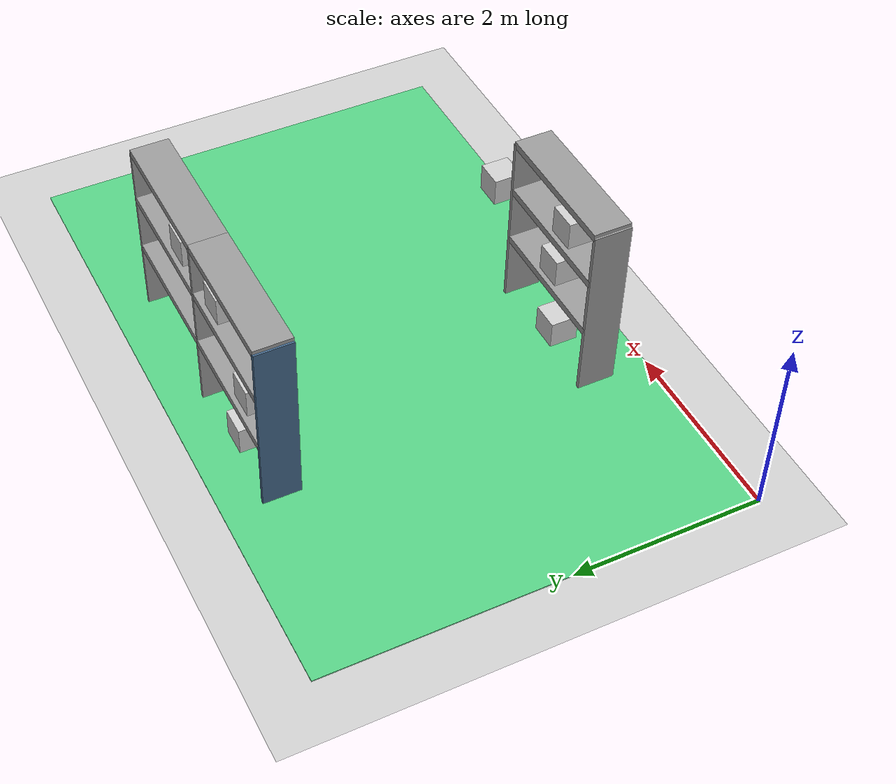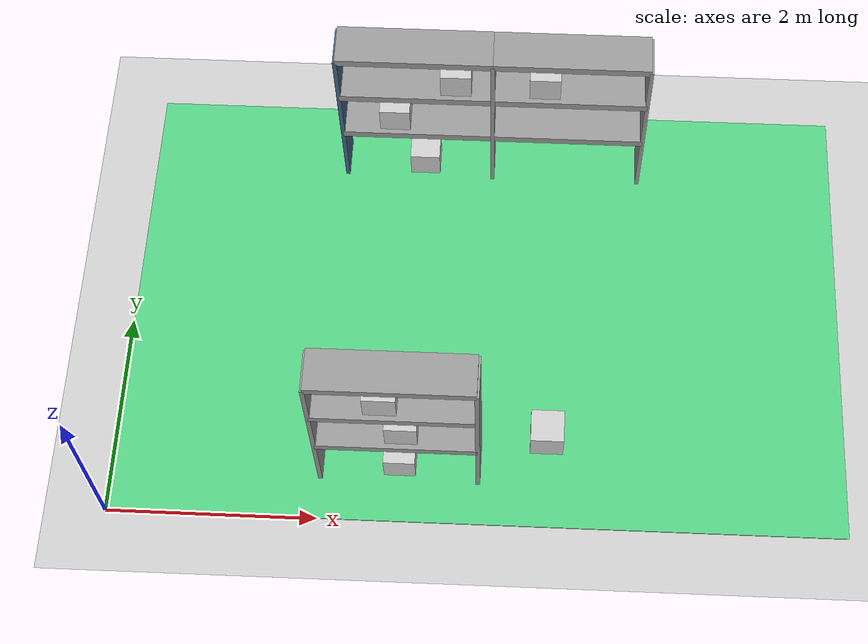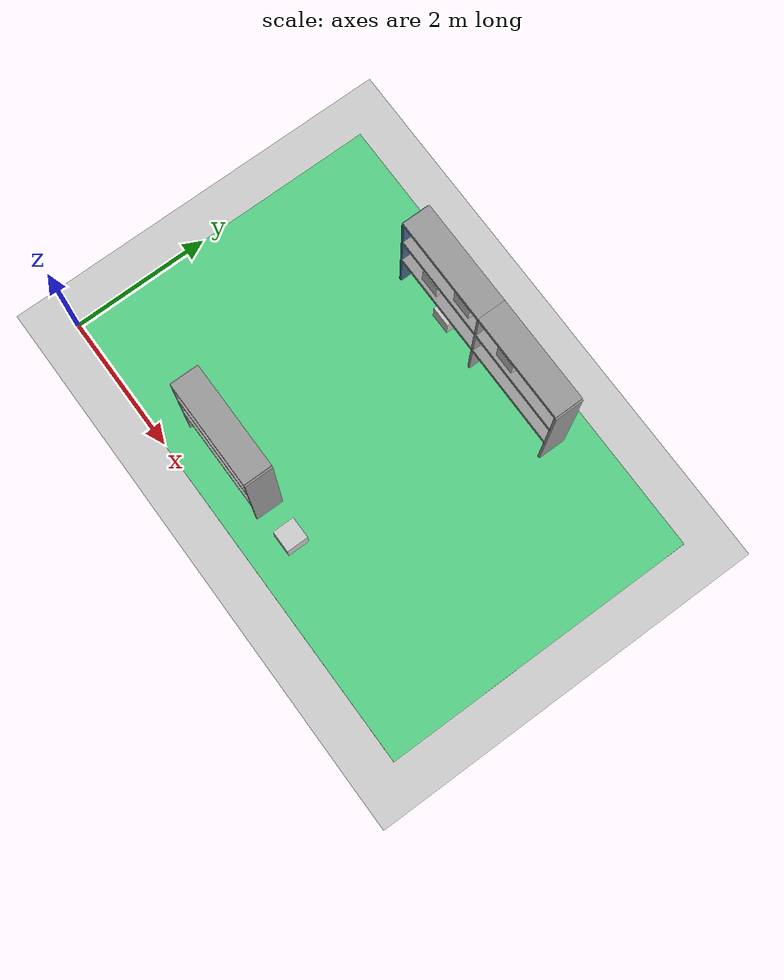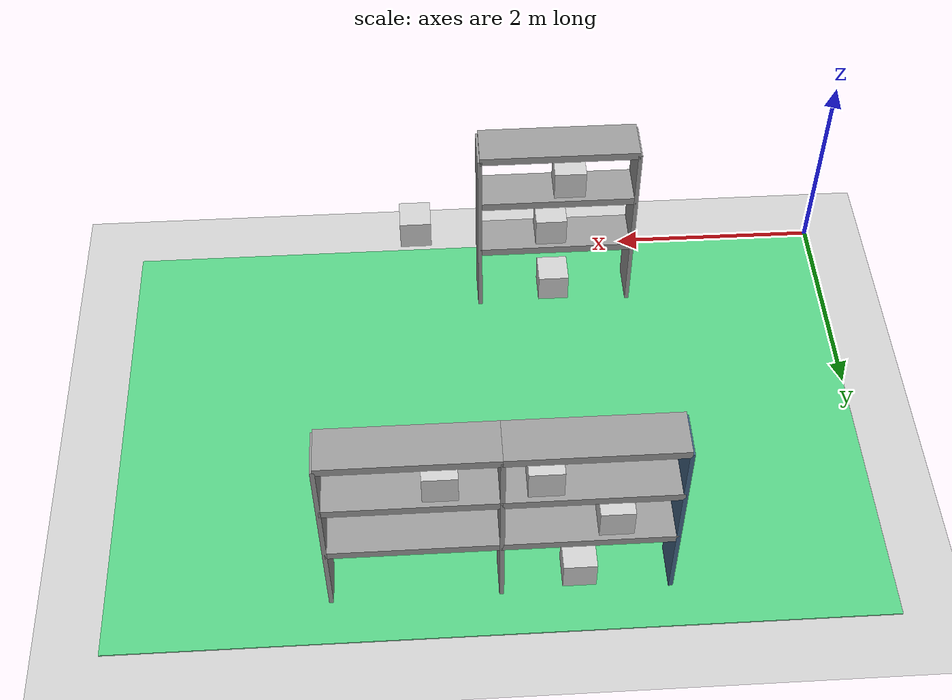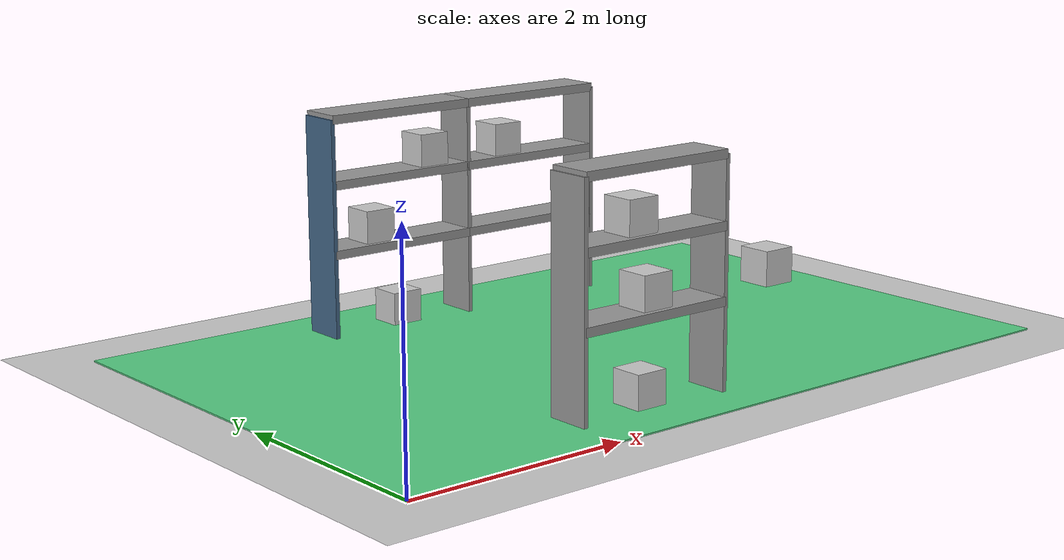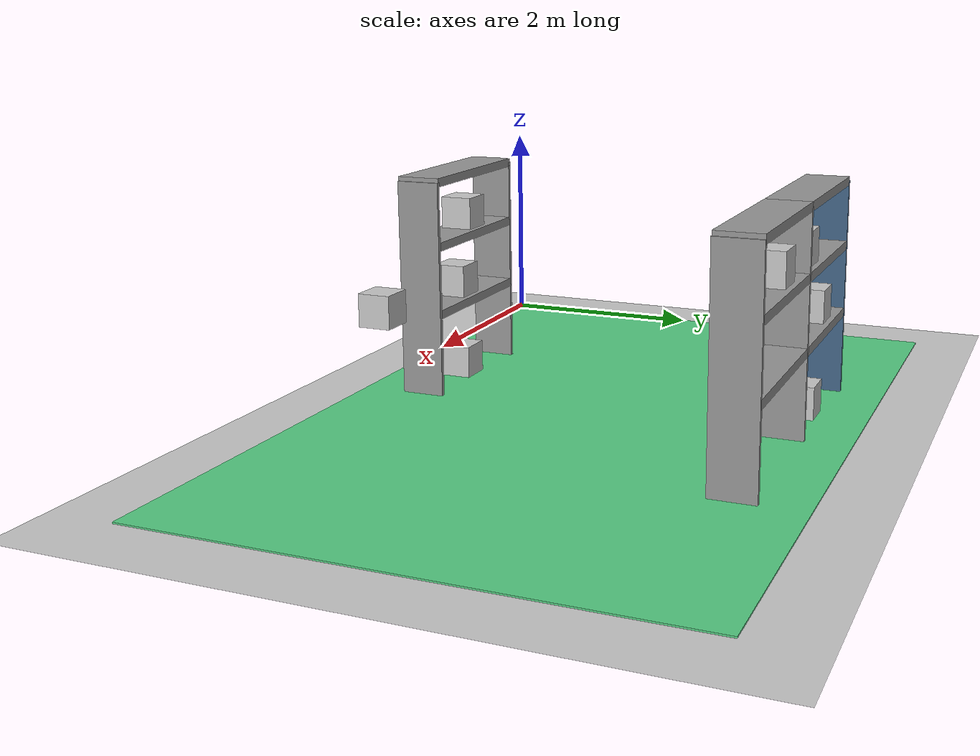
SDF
<sdf version="1.7">
 <world name="default">
  <model name="ground_plane">
   <static>1</static>
   <link name="link">
    <collision name="collision">
     <geometry><plane><normal>0 0 1</normal><size>100 100</size></plane></geometry>
     <surface>
      <contact><collide_bitmask>65535</collide_bitmask></contact>
      <friction><ode><mu>100</mu><mu2>50</mu2></ode></friction>
     </surface>
    </collision>
    <visual name="visual">
     <cast_shadows>0</cast_shadows>
     <geometry><plane><normal>0 0 1</normal><size>100 100</size></plane></geometry>
     <material>
      <script><uri>file://media/materials/scripts/gazebo.material</uri><name>Gazebo/Grey</name></script>
     </material>
    </visual>
   </link>
  </model>
  <model name="Shelf_1">
   <static>1</static>
   <link name="link_0">
    <inertial>
     <mass>1</mass>
     <inertia>
      <ixx>0.166667</ixx>
      <ixy>0</ixy>
      <ixz>0</ixz>
      <iyy>0.166667</iyy>
      <iyz>0</iyz>
      <izz>0.166667</izz>
     </inertia>
    </inertial>
    <pose>-0.75 0 -0.238 0 -0 0</pose>
    <visual name="visual">
     <geometry><box><size>0.04 0.4 2</size></box></geometry>
     <material>
      <lighting>1</lighting>
      <shader type="pixel"><normal_map>__default__</normal_map></shader>
      <ambient>0.267 0.4039 0.5372 1</ambient>
      <diffuse>0.267 0.4039 0.5372 1</diffuse>
      <specular>0.01 0.01 0.01 1</specular>
      <emissive>0 0 0 1</emissive>
     </material>
    </visual>
    <collision name="collision">
     <geometry><box><size>0.04 0.4 2</size></box></geometry>
     <surface>
      <friction>
       <ode><mu>1</mu><mu2>1</mu2><fdir1>0 0 0</fdir1><slip1>0</slip1><slip2>0</slip2></ode>
       <torsional>
        <coefficient>1</coefficient>
        <patch_radius>0</patch_radius>
        <surface_radius>0</surface_radius>
        <use_patch_radius>1</use_patch_radius>
        <ode><slip>0</slip></ode>
       </torsional>
      </friction>
      <bounce><restitution_coefficient>0</restitution_coefficient><threshold>1e+06</threshold></bounce>
      <contact>
       <collide_without_contact>0</collide_without_contact>
       <collide_without_contact_bitmask>1</collide_without_contact_bitmask>
       <collide_bitmask>1</collide_bitmask>
       <ode>
        <soft_cfm>0</soft_cfm>
        <soft_erp>0.2</soft_erp>
        <kp>1e+13</kp>
        <kd>1</kd>
        <max_vel>0.01</max_vel>
        <min_depth>0</min_depth>
       </ode>
       <bullet>
        <split_impulse>1</split_impulse>
        <split_impulse_penetration_threshold>-0.01</split_impulse_penetration_threshold>
        <soft_cfm>0</soft_cfm>
        <soft_erp>0.2</soft_erp>
        <kp>1e+13</kp>
        <kd>1</kd>
       </bullet>
      </contact>
     </surface>
    </collision>
   </link>
   <link name="link_0_clone">
    <inertial>
     <mass>1</mass>
     <inertia>
      <ixx>0.166667</ixx>
      <ixy>0</ixy>
      <ixz>0</ixz>
      <iyy>0.166667</iyy>
      <iyz>0</iyz>
      <izz>0.166667</izz>
     </inertia>
    </inertial>
    <pose>0.75 0 -0.238 0 -0 0</pose>
    <visual name="visual">
     <geometry><box><size>0.04 0.4 2</size></box></geometry>
     <material>
      <lighting>1</lighting>
      <script><uri>file://media/materials/scripts/gazebo.material</uri><name>Gazebo/Grey</name></script>
      <shader type="pixel"><normal_map>__default__</normal_map></shader>
      <ambient>0.3 0.3 0.3 1</ambient>
      <diffuse>0.7 0.7 0.7 1</diffuse>
      <specular>0.01 0.01 0.01 1</specular>
      <emissive>0 0 0 1</emissive>
     </material>
    </visual>
    <collision name="collision">
     <geometry><box><size>0.04 0.4 2</size></box></geometry>
     <surface>
      <friction>
       <ode><mu>1</mu><mu2>1</mu2><fdir1>0 0 0</fdir1><slip1>0</slip1><slip2>0</slip2></ode>
       <torsional>
        <coefficient>1</coefficient>
        <patch_radius>0</patch_radius>
        <surface_radius>0</surface_radius>
        <use_patch_radius>1</use_patch_radius>
        <ode><slip>0</slip></ode>
       </torsional>
      </friction>
      <bounce><restitution_coefficient>0</restitution_coefficient><threshold>1e+06</threshold></bounce>
      <contact>
       <collide_without_contact>0</collide_without_contact>
       <collide_without_contact_bitmask>1</collide_without_contact_bitmask>
       <collide_bitmask>1</collide_bitmask>
       <ode>
        <soft_cfm>0</soft_cfm>
        <soft_erp>0.2</soft_erp>
        <kp>1e+13</kp>
        <kd>1</kd>
        <max_vel>0.01</max_vel>
        <min_depth>0</min_depth>
       </ode>
       <bullet>
        <split_impulse>1</split_impulse>
        <split_impulse_penetration_threshold>-0.01</split_impulse_penetration_threshold>
        <soft_cfm>0</soft_cfm>
        <soft_erp>0.2</soft_erp>
        <kp>1e+13</kp>
        <kd>1</kd>
       </bullet>
      </contact>
     </surface>
    </collision>
   </link>
   <link name="link_1">
    <inertial>
     <mass>1</mass>
     <inertia>
      <ixx>0.166667</ixx>
      <ixy>0</ixy>
      <ixz>0</ixz>
      <iyy>0.166667</iyy>
      <iyz>0</iyz>
      <izz>0.166667</izz>
     </inertia>
    </inertial>
    <pose>0 0 -0.458 0 -0 0</pose>
    <visual name="visual">
     <geometry><box><size>1.5 0.4 0.08</size></box></geometry>
     <material>
      <lighting>1</lighting>
      <script><uri>file://media/materials/scripts/gazebo.material</uri><name>Gazebo/Grey</name></script>
      <shader type="pixel"><normal_map>__default__</normal_map></shader>
      <ambient>0.3 0.3 0.3 1</ambient>
      <diffuse>0.7 0.7 0.7 1</diffuse>
      <specular>0.01 0.01 0.01 1</specular>
      <emissive>0 0 0 1</emissive>
     </material>
    </visual>
    <collision name="collision">
     <geometry><box><size>1.5 0.4 0.08</size></box></geometry>
     <surface>
      <friction>
       <ode><mu>1</mu><mu2>1</mu2><fdir1>0 0 0</fdir1><slip1>0</slip1><slip2>0</slip2></ode>
       <torsional>
        <coefficient>1</coefficient>
        <patch_radius>0</patch_radius>
        <surface_radius>0</surface_radius>
        <use_patch_radius>1</use_patch_radius>
        <ode><slip>0</slip></ode>
       </torsional>
      </friction>
      <bounce><restitution_coefficient>0</restitution_coefficient><threshold>1e+06</threshold></bounce>
      <contact>
       <collide_without_contact>0</collide_without_contact>
       <collide_without_contact_bitmask>1</collide_without_contact_bitmask>
       <collide_bitmask>1</collide_bitmask>
       <ode>
        <soft_cfm>0</soft_cfm>
        <soft_erp>0.2</soft_erp>
        <kp>1e+13</kp>
        <kd>1</kd>
        <max_vel>0.01</max_vel>
        <min_depth>0</min_depth>
       </ode>
       <bullet>
        <split_impulse>1</split_impulse>
        <split_impulse_penetration_threshold>-0.01</split_impulse_penetration_threshold>
        <soft_cfm>0</soft_cfm>
        <soft_erp>0.2</soft_erp>
        <kp>1e+13</kp>
        <kd>1</kd>
       </bullet>
      </contact>
     </surface>
    </collision>
   </link>
   <link name="link_1_clone">
    <inertial>
     <mass>1</mass>
     <inertia>
      <ixx>0.166667</ixx>
      <ixy>0</ixy>
      <ixz>0</ixz>
      <iyy>0.166667</iyy>
      <iyz>0</iyz>
      <izz>0.166667</izz>
     </inertia>
    </inertial>
    <pose>0 0 0.172 0 -0 0</pose>
    <visual name="visual">
     <geometry><box><size>1.5 0.4 0.08</size></box></geometry>
     <material>
      <lighting>1</lighting>
      <script><uri>file://media/materials/scripts/gazebo.material</uri><name>Gazebo/Grey</name></script>
      <shader type="pixel"><normal_map>__default__</normal_map></shader>
      <ambient>0.3 0.3 0.3 1</ambient>
      <diffuse>0.7 0.7 0.7 1</diffuse>
      <specular>0.01 0.01 0.01 1</specular>
      <emissive>0 0 0 1</emissive>
     </material>
    </visual>
    <collision name="collision">
     <geometry><box><size>1.5 0.4 0.08</size></box></geometry>
     <surface>
      <friction>
       <ode><mu>1</mu><mu2>1</mu2><fdir1>0 0 0</fdir1><slip1>0</slip1><slip2>0</slip2></ode>
       <torsional>
        <coefficient>1</coefficient>
        <patch_radius>0</patch_radius>
        <surface_radius>0</surface_radius>
        <use_patch_radius>1</use_patch_radius>
        <ode><slip>0</slip></ode>
       </torsional>
      </friction>
      <bounce><restitution_coefficient>0</restitution_coefficient><threshold>1e+06</threshold></bounce>
      <contact>
       <collide_without_contact>0</collide_without_contact>
       <collide_without_contact_bitmask>1</collide_without_contact_bitmask>
       <collide_bitmask>1</collide_bitmask>
       <ode>
        <soft_cfm>0</soft_cfm>
        <soft_erp>0.2</soft_erp>
        <kp>1e+13</kp>
        <kd>1</kd>
        <max_vel>0.01</max_vel>
        <min_depth>0</min_depth>
       </ode>
       <bullet>
        <split_impulse>1</split_impulse>
        <split_impulse_penetration_threshold>-0.01</split_impulse_penetration_threshold>
        <soft_cfm>0</soft_cfm>
        <soft_erp>0.2</soft_erp>
        <kp>1e+13</kp>
        <kd>1</kd>
       </bullet>
      </contact>
     </surface>
    </collision>
   </link>
   <link name="link_1_clone_clone">
    <inertial>
     <mass>1</mass>
     <inertia>
      <ixx>0.166667</ixx>
      <ixy>0</ixy>
      <ixz>0</ixz>
      <iyy>0.166667</iyy>
      <iyz>0</iyz>
      <izz>0.166667</izz>
     </inertia>
    </inertial>
    <pose>0 0 0.762 0 -0 0</pose>
    <visual name="visual">
     <geometry><box><size>1.5 0.4 0.08</size></box></geometry>
     <material>
      <lighting>1</lighting>
      <script><uri>file://media/materials/scripts/gazebo.material</uri><name>Gazebo/Grey</name></script>
      <shader type="pixel"><normal_map>__default__</normal_map></shader>
      <ambient>0.3 0.3 0.3 1</ambient>
      <diffuse>0.7 0.7 0.7 1</diffuse>
      <specular>0.01 0.01 0.01 1</specular>
      <emissive>0 0 0 1</emissive>
     </material>
    </visual>
    <collision name="collision">
     <geometry><box><size>1.5 0.4 0.08</size></box></geometry>
     <surface>
      <friction>
       <ode><mu>1</mu><mu2>1</mu2><fdir1>0 0 0</fdir1><slip1>0</slip1><slip2>0</slip2></ode>
       <torsional>
        <coefficient>1</coefficient>
        <patch_radius>0</patch_radius>
        <surface_radius>0</surface_radius>
        <use_patch_radius>1</use_patch_radius>
        <ode><slip>0</slip></ode>
       </torsional>
      </friction>
      <bounce><restitution_coefficient>0</restitution_coefficient><threshold>1e+06</threshold></bounce>
      <contact>
       <collide_without_contact>0</collide_without_contact>
       <collide_without_contact_bitmask>1</collide_without_contact_bitmask>
       <collide_bitmask>1</collide_bitmask>
       <ode>
        <soft_cfm>0</soft_cfm>
        <soft_erp>0.2</soft_erp>
        <kp>1e+13</kp>
        <kd>1</kd>
        <max_vel>0.01</max_vel>
        <min_depth>0</min_depth>
       </ode>
       <bullet>
        <split_impulse>1</split_impulse>
        <split_impulse_penetration_threshold>-0.01</split_impulse_penetration_threshold>
        <soft_cfm>0</soft_cfm>
        <soft_erp>0.2</soft_erp>
        <kp>1e+13</kp>
        <kd>1</kd>
       </bullet>
      </contact>
     </surface>
    </collision>
   </link>
   <static>0</static>
   <pose>2.75 4 1.23 0 -0 0</pose>
  </model>
  <model name="Shelf_1_clone">
   <static>1</static>
   <link name="link_0">
    <inertial>
     <mass>1</mass>
     <inertia>
      <ixx>0.166667</ixx>
      <ixy>0</ixy>
      <ixz>0</ixz>
      <iyy>0.166667</iyy>
      <iyz>0</iyz>
      <izz>0.166667</izz>
     </inertia>
    </inertial>
    <pose>-0.75 0 -0.238 0 -0 0</pose>
    <visual name="visual">
     <geometry><box><size>0.04 0.4 2</size></box></geometry>
     <material>
      <lighting>1</lighting>
      <script><uri>file://media/materials/scripts/gazebo.material</uri><name>Gazebo/Grey</name></script>
      <shader type="pixel"><normal_map>__default__</normal_map></shader>
      <ambient>0.3 0.3 0.3 1</ambient>
      <diffuse>0.7 0.7 0.7 1</diffuse>
      <specular>0.01 0.01 0.01 1</specular>
      <emissive>0 0 0 1</emissive>
     </material>
    </visual>
    <collision name="collision">
     <geometry><box><size>0.04 0.4 2</size></box></geometry>
     <surface>
      <friction>
       <ode><mu>1</mu><mu2>1</mu2><fdir1>0 0 0</fdir1><slip1>0</slip1><slip2>0</slip2></ode>
       <torsional>
        <coefficient>1</coefficient>
        <patch_radius>0</patch_radius>
        <surface_radius>0</surface_radius>
        <use_patch_radius>1</use_patch_radius>
        <ode><slip>0</slip></ode>
       </torsional>
      </friction>
      <bounce><restitution_coefficient>0</restitution_coefficient><threshold>1e+06</threshold></bounce>
      <contact>
       <collide_without_contact>0</collide_without_contact>
       <collide_without_contact_bitmask>1</collide_without_contact_bitmask>
       <collide_bitmask>1</collide_bitmask>
       <ode>
        <soft_cfm>0</soft_cfm>
        <soft_erp>0.2</soft_erp>
        <kp>1e+13</kp>
        <kd>1</kd>
        <max_vel>0.01</max_vel>
        <min_depth>0</min_depth>
       </ode>
       <bullet>
        <split_impulse>1</split_impulse>
        <split_impulse_penetration_threshold>-0.01</split_impulse_penetration_threshold>
        <soft_cfm>0</soft_cfm>
        <soft_erp>0.2</soft_erp>
        <kp>1e+13</kp>
        <kd>1</kd>
       </bullet>
      </contact>
     </surface>
    </collision>
   </link>
   <link name="link_0_clone">
    <inertial>
     <mass>1</mass>
     <inertia>
      <ixx>0.166667</ixx>
      <ixy>0</ixy>
      <ixz>0</ixz>
      <iyy>0.166667</iyy>
      <iyz>0</iyz>
      <izz>0.166667</izz>
     </inertia>
    </inertial>
    <pose>0.75 0 -0.238 0 -0 0</pose>
    <visual name="visual">
     <geometry><box><size>0.04 0.4 2</size></box></geometry>
     <material>
      <lighting>1</lighting>
      <script><uri>file://media/materials/scripts/gazebo.material</uri><name>Gazebo/Grey</name></script>
      <shader type="pixel"><normal_map>__default__</normal_map></shader>
      <ambient>0.3 0.3 0.3 1</ambient>
      <diffuse>0.7 0.7 0.7 1</diffuse>
      <specular>0.01 0.01 0.01 1</specular>
      <emissive>0 0 0 1</emissive>
     </material>
    </visual>
    <collision name="collision">
     <geometry><box><size>0.04 0.4 2</size></box></geometry>
     <surface>
      <friction>
       <ode><mu>1</mu><mu2>1</mu2><fdir1>0 0 0</fdir1><slip1>0</slip1><slip2>0</slip2></ode>
       <torsional>
        <coefficient>1</coefficient>
        <patch_radius>0</patch_radius>
        <surface_radius>0</surface_radius>
        <use_patch_radius>1</use_patch_radius>
        <ode><slip>0</slip></ode>
       </torsional>
      </friction>
      <bounce><restitution_coefficient>0</restitution_coefficient><threshold>1e+06</threshold></bounce>
      <contact>
       <collide_without_contact>0</collide_without_contact>
       <collide_without_contact_bitmask>1</collide_without_contact_bitmask>
       <collide_bitmask>1</collide_bitmask>
       <ode>
        <soft_cfm>0</soft_cfm>
        <soft_erp>0.2</soft_erp>
        <kp>1e+13</kp>
        <kd>1</kd>
        <max_vel>0.01</max_vel>
        <min_depth>0</min_depth>
       </ode>
       <bullet>
        <split_impulse>1</split_impulse>
        <split_impulse_penetration_threshold>-0.01</split_impulse_penetration_threshold>
        <soft_cfm>0</soft_cfm>
        <soft_erp>0.2</soft_erp>
        <kp>1e+13</kp>
        <kd>1</kd>
       </bullet>
      </contact>
     </surface>
    </collision>
   </link>
   <link name="link_1">
    <inertial>
     <mass>1</mass>
     <inertia>
      <ixx>0.166667</ixx>
      <ixy>0</ixy>
      <ixz>0</ixz>
      <iyy>0.166667</iyy>
      <iyz>0</iyz>
      <izz>0.166667</izz>
     </inertia>
    </inertial>
    <pose>0 0 -0.458 0 -0 0</pose>
    <visual name="visual">
     <geometry><box><size>1.5 0.4 0.08</size></box></geometry>
     <material>
      <lighting>1</lighting>
      <script><uri>file://media/materials/scripts/gazebo.material</uri><name>Gazebo/Grey</name></script>
      <shader type="pixel"><normal_map>__default__</normal_map></shader>
      <ambient>0.3 0.3 0.3 1</ambient>
      <diffuse>0.7 0.7 0.7 1</diffuse>
      <specular>0.01 0.01 0.01 1</specular>
      <emissive>0 0 0 1</emissive>
     </material>
    </visual>
    <collision name="collision">
     <geometry><box><size>1.5 0.4 0.08</size></box></geometry>
     <surface>
      <friction>
       <ode><mu>1</mu><mu2>1</mu2><fdir1>0 0 0</fdir1><slip1>0</slip1><slip2>0</slip2></ode>
       <torsional>
        <coefficient>1</coefficient>
        <patch_radius>0</patch_radius>
        <surface_radius>0</surface_radius>
        <use_patch_radius>1</use_patch_radius>
        <ode><slip>0</slip></ode>
       </torsional>
      </friction>
      <bounce><restitution_coefficient>0</restitution_coefficient><threshold>1e+06</threshold></bounce>
      <contact>
       <collide_without_contact>0</collide_without_contact>
       <collide_without_contact_bitmask>1</collide_without_contact_bitmask>
       <collide_bitmask>1</collide_bitmask>
       <ode>
        <soft_cfm>0</soft_cfm>
        <soft_erp>0.2</soft_erp>
        <kp>1e+13</kp>
        <kd>1</kd>
        <max_vel>0.01</max_vel>
        <min_depth>0</min_depth>
       </ode>
       <bullet>
        <split_impulse>1</split_impulse>
        <split_impulse_penetration_threshold>-0.01</split_impulse_penetration_threshold>
        <soft_cfm>0</soft_cfm>
        <soft_erp>0.2</soft_erp>
        <kp>1e+13</kp>
        <kd>1</kd>
       </bullet>
      </contact>
     </surface>
    </collision>
   </link>
   <link name="link_1_clone">
    <inertial>
     <mass>1</mass>
     <inertia>
      <ixx>0.166667</ixx>
      <ixy>0</ixy>
      <ixz>0</ixz>
      <iyy>0.166667</iyy>
      <iyz>0</iyz>
      <izz>0.166667</izz>
     </inertia>
    </inertial>
    <pose>0 0 0.172 0 -0 0</pose>
    <visual name="visual">
     <geometry><box><size>1.5 0.4 0.08</size></box></geometry>
     <material>
      <lighting>1</lighting>
      <script><uri>file://media/materials/scripts/gazebo.material</uri><name>Gazebo/Grey</name></script>
      <shader type="pixel"><normal_map>__default__</normal_map></shader>
      <ambient>0.3 0.3 0.3 1</ambient>
      <diffuse>0.7 0.7 0.7 1</diffuse>
      <specular>0.01 0.01 0.01 1</specular>
      <emissive>0 0 0 1</emissive>
     </material>
    </visual>
    <collision name="collision">
     <geometry><box><size>1.5 0.4 0.08</size></box></geometry>
     <surface>
      <friction>
       <ode><mu>1</mu><mu2>1</mu2><fdir1>0 0 0</fdir1><slip1>0</slip1><slip2>0</slip2></ode>
       <torsional>
        <coefficient>1</coefficient>
        <patch_radius>0</patch_radius>
        <surface_radius>0</surface_radius>
        <use_patch_radius>1</use_patch_radius>
        <ode><slip>0</slip></ode>
       </torsional>
      </friction>
      <bounce><restitution_coefficient>0</restitution_coefficient><threshold>1e+06</threshold></bounce>
      <contact>
       <collide_without_contact>0</collide_without_contact>
       <collide_without_contact_bitmask>1</collide_without_contact_bitmask>
       <collide_bitmask>1</collide_bitmask>
       <ode>
        <soft_cfm>0</soft_cfm>
        <soft_erp>0.2</soft_erp>
        <kp>1e+13</kp>
        <kd>1</kd>
        <max_vel>0.01</max_vel>
        <min_depth>0</min_depth>
       </ode>
       <bullet>
        <split_impulse>1</split_impulse>
        <split_impulse_penetration_threshold>-0.01</split_impulse_penetration_threshold>
        <soft_cfm>0</soft_cfm>
        <soft_erp>0.2</soft_erp>
        <kp>1e+13</kp>
        <kd>1</kd>
       </bullet>
      </contact>
     </surface>
    </collision>
   </link>
   <link name="link_1_clone_clone">
    <inertial>
     <mass>1</mass>
     <inertia>
      <ixx>0.166667</ixx>
      <ixy>0</ixy>
      <ixz>0</ixz>
      <iyy>0.166667</iyy>
      <iyz>0</iyz>
      <izz>0.166667</izz>
     </inertia>
    </inertial>
    <pose>0 0 0.762 0 -0 0</pose>
    <visual name="visual">
     <geometry><box><size>1.5 0.4 0.08</size></box></geometry>
     <material>
      <lighting>1</lighting>
      <script><uri>file://media/materials/scripts/gazebo.material</uri><name>Gazebo/Grey</name></script>
      <shader type="pixel"><normal_map>__default__</normal_map></shader>
      <ambient>0.3 0.3 0.3 1</ambient>
      <diffuse>0.7 0.7 0.7 1</diffuse>
      <specular>0.01 0.01 0.01 1</specular>
      <emissive>0 0 0 1</emissive>
     </material>
    </visual>
    <collision name="collision">
     <geometry><box><size>1.5 0.4 0.08</size></box></geometry>
     <surface>
      <friction>
       <ode><mu>1</mu><mu2>1</mu2><fdir1>0 0 0</fdir1><slip1>0</slip1><slip2>0</slip2></ode>
       <torsional>
        <coefficient>1</coefficient>
        <patch_radius>0</patch_radius>
        <surface_radius>0</surface_radius>
        <use_patch_radius>1</use_patch_radius>
        <ode><slip>0</slip></ode>
       </torsional>
      </friction>
      <bounce><restitution_coefficient>0</restitution_coefficient><threshold>1e+06</threshold></bounce>
      <contact>
       <collide_without_contact>0</collide_without_contact>
       <collide_without_contact_bitmask>1</collide_without_contact_bitmask>
       <collide_bitmask>1</collide_bitmask>
       <ode>
        <soft_cfm>0</soft_cfm>
        <soft_erp>0.2</soft_erp>
        <kp>1e+13</kp>
        <kd>1</kd>
        <max_vel>0.01</max_vel>
        <min_depth>0</min_depth>
       </ode>
       <bullet>
        <split_impulse>1</split_impulse>
        <split_impulse_penetration_threshold>-0.01</split_impulse_penetration_threshold>
        <soft_cfm>0</soft_cfm>
        <soft_erp>0.2</soft_erp>
        <kp>1e+13</kp>
        <kd>1</kd>
       </bullet>
      </contact>
     </surface>
    </collision>
   </link>
   <static>0</static>
   <pose>4.25 4 1.23 0 -0 0</pose>
  </model>
  <model name="Shelf_1_clone_0">
   <static>1</static>
   <link name="link_0">
    <inertial>
     <mass>1</mass>
     <inertia>
      <ixx>0.166667</ixx>
      <ixy>0</ixy>
      <ixz>0</ixz>
      <iyy>0.166667</iyy>
      <iyz>0</iyz>
      <izz>0.166667</izz>
     </inertia>
    </inertial>
    <pose>-0.75 0 -0.238 0 -0 0</pose>
    <visual name="visual">
     <geometry><box><size>0.04 0.4 2</size></box></geometry>
     <material>
      <lighting>1</lighting>
      <script><uri>file://media/materials/scripts/gazebo.material</uri><name>Gazebo/Grey</name></script>
      <shader type="pixel"><normal_map>__default__</normal_map></shader>
      <ambient>0.3 0.3 0.3 1</ambient>
      <diffuse>0.7 0.7 0.7 1</diffuse>
      <specular>0.01 0.01 0.01 1</specular>
      <emissive>0 0 0 1</emissive>
     </material>
    </visual>
    <collision name="collision">
     <geometry><box><size>0.04 0.4 2</size></box></geometry>
     <surface>
      <friction>
       <ode><mu>1</mu><mu2>1</mu2><fdir1>0 0 0</fdir1><slip1>0</slip1><slip2>0</slip2></ode>
       <torsional>
        <coefficient>1</coefficient>
        <patch_radius>0</patch_radius>
        <surface_radius>0</surface_radius>
        <use_patch_radius>1</use_patch_radius>
        <ode><slip>0</slip></ode>
       </torsional>
      </friction>
      <bounce><restitution_coefficient>0</restitution_coefficient><threshold>1e+06</threshold></bounce>
      <contact>
       <collide_without_contact>0</collide_without_contact>
       <collide_without_contact_bitmask>1</collide_without_contact_bitmask>
       <collide_bitmask>1</collide_bitmask>
       <ode>
        <soft_cfm>0</soft_cfm>
        <soft_erp>0.2</soft_erp>
        <kp>1e+13</kp>
        <kd>1</kd>
        <max_vel>0.01</max_vel>
        <min_depth>0</min_depth>
       </ode>
       <bullet>
        <split_impulse>1</split_impulse>
        <split_impulse_penetration_threshold>-0.01</split_impulse_penetration_threshold>
        <soft_cfm>0</soft_cfm>
        <soft_erp>0.2</soft_erp>
        <kp>1e+13</kp>
        <kd>1</kd>
       </bullet>
      </contact>
     </surface>
    </collision>
   </link>
   <link name="link_0_clone">
    <inertial>
     <mass>1</mass>
     <inertia>
      <ixx>0.166667</ixx>
      <ixy>0</ixy>
      <ixz>0</ixz>
      <iyy>0.166667</iyy>
      <iyz>0</iyz>
      <izz>0.166667</izz>
     </inertia>
    </inertial>
    <pose>0.75 0 -0.238 0 -0 0</pose>
    <visual name="visual">
     <geometry><box><size>0.04 0.4 2</size></box></geometry>
     <material>
      <lighting>1</lighting>
      <script><uri>file://media/materials/scripts/gazebo.material</uri><name>Gazebo/Grey</name></script>
      <shader type="pixel"><normal_map>__default__</normal_map></shader>
      <ambient>0.3 0.3 0.3 1</ambient>
      <diffuse>0.7 0.7 0.7 1</diffuse>
      <specular>0.01 0.01 0.01 1</specular>
      <emissive>0 0 0 1</emissive>
     </material>
    </visual>
    <collision name="collision">
     <geometry><box><size>0.04 0.4 2</size></box></geometry>
     <surface>
      <friction>
       <ode><mu>1</mu><mu2>1</mu2><fdir1>0 0 0</fdir1><slip1>0</slip1><slip2>0</slip2></ode>
       <torsional>
        <coefficient>1</coefficient>
        <patch_radius>0</patch_radius>
        <surface_radius>0</surface_radius>
        <use_patch_radius>1</use_patch_radius>
        <ode><slip>0</slip></ode>
       </torsional>
      </friction>
      <bounce><restitution_coefficient>0</restitution_coefficient><threshold>1e+06</threshold></bounce>
      <contact>
       <collide_without_contact>0</collide_without_contact>
       <collide_without_contact_bitmask>1</collide_without_contact_bitmask>
       <collide_bitmask>1</collide_bitmask>
       <ode>
        <soft_cfm>0</soft_cfm>
        <soft_erp>0.2</soft_erp>
        <kp>1e+13</kp>
        <kd>1</kd>
        <max_vel>0.01</max_vel>
        <min_depth>0</min_depth>
       </ode>
       <bullet>
        <split_impulse>1</split_impulse>
        <split_impulse_penetration_threshold>-0.01</split_impulse_penetration_threshold>
        <soft_cfm>0</soft_cfm>
        <soft_erp>0.2</soft_erp>
        <kp>1e+13</kp>
        <kd>1</kd>
       </bullet>
      </contact>
     </surface>
    </collision>
   </link>
   <link name="link_1">
    <inertial>
     <mass>1</mass>
     <inertia>
      <ixx>0.166667</ixx>
      <ixy>0</ixy>
      <ixz>0</ixz>
      <iyy>0.166667</iyy>
      <iyz>0</iyz>
      <izz>0.166667</izz>
     </inertia>
    </inertial>
    <pose>0 0 -0.458 0 -0 0</pose>
    <visual name="visual">
     <geometry><box><size>1.5 0.4 0.08</size></box></geometry>
     <material>
      <lighting>1</lighting>
      <script><uri>file://media/materials/scripts/gazebo.material</uri><name>Gazebo/Grey</name></script>
      <shader type="pixel"><normal_map>__default__</normal_map></shader>
      <ambient>0.3 0.3 0.3 1</ambient>
      <diffuse>0.7 0.7 0.7 1</diffuse>
      <specular>0.01 0.01 0.01 1</specular>
      <emissive>0 0 0 1</emissive>
     </material>
    </visual>
    <collision name="collision">
     <geometry><box><size>1.5 0.4 0.08</size></box></geometry>
     <surface>
      <friction>
       <ode><mu>1</mu><mu2>1</mu2><fdir1>0 0 0</fdir1><slip1>0</slip1><slip2>0</slip2></ode>
       <torsional>
        <coefficient>1</coefficient>
        <patch_radius>0</patch_radius>
        <surface_radius>0</surface_radius>
        <use_patch_radius>1</use_patch_radius>
        <ode><slip>0</slip></ode>
       </torsional>
      </friction>
      <bounce><restitution_coefficient>0</restitution_coefficient><threshold>1e+06</threshold></bounce>
      <contact>
       <collide_without_contact>0</collide_without_contact>
       <collide_without_contact_bitmask>1</collide_without_contact_bitmask>
       <collide_bitmask>1</collide_bitmask>
       <ode>
        <soft_cfm>0</soft_cfm>
        <soft_erp>0.2</soft_erp>
        <kp>1e+13</kp>
        <kd>1</kd>
        <max_vel>0.01</max_vel>
        <min_depth>0</min_depth>
       </ode>
       <bullet>
        <split_impulse>1</split_impulse>
        <split_impulse_penetration_threshold>-0.01</split_impulse_penetration_threshold>
        <soft_cfm>0</soft_cfm>
        <soft_erp>0.2</soft_erp>
        <kp>1e+13</kp>
        <kd>1</kd>
       </bullet>
      </contact>
     </surface>
    </collision>
   </link>
   <link name="link_1_clone">
    <inertial>
     <mass>1</mass>
     <inertia>
      <ixx>0.166667</ixx>
      <ixy>0</ixy>
      <ixz>0</ixz>
      <iyy>0.166667</iyy>
      <iyz>0</iyz>
      <izz>0.166667</izz>
     </inertia>
    </inertial>
    <pose>0 0 0.172 0 -0 0</pose>
    <visual name="visual">
     <geometry><box><size>1.5 0.4 0.08</size></box></geometry>
     <material>
      <lighting>1</lighting>
      <script><uri>file://media/materials/scripts/gazebo.material</uri><name>Gazebo/Grey</name></script>
      <shader type="pixel"><normal_map>__default__</normal_map></shader>
      <ambient>0.3 0.3 0.3 1</ambient>
      <diffuse>0.7 0.7 0.7 1</diffuse>
      <specular>0.01 0.01 0.01 1</specular>
      <emissive>0 0 0 1</emissive>
     </material>
    </visual>
    <collision name="collision">
     <geometry><box><size>1.5 0.4 0.08</size></box></geometry>
     <surface>
      <friction>
       <ode><mu>1</mu><mu2>1</mu2><fdir1>0 0 0</fdir1><slip1>0</slip1><slip2>0</slip2></ode>
       <torsional>
        <coefficient>1</coefficient>
        <patch_radius>0</patch_radius>
        <surface_radius>0</surface_radius>
        <use_patch_radius>1</use_patch_radius>
        <ode><slip>0</slip></ode>
       </torsional>
      </friction>
      <bounce><restitution_coefficient>0</restitution_coefficient><threshold>1e+06</threshold></bounce>
      <contact>
       <collide_without_contact>0</collide_without_contact>
       <collide_without_contact_bitmask>1</collide_without_contact_bitmask>
       <collide_bitmask>1</collide_bitmask>
       <ode>
        <soft_cfm>0</soft_cfm>
        <soft_erp>0.2</soft_erp>
        <kp>1e+13</kp>
        <kd>1</kd>
        <max_vel>0.01</max_vel>
        <min_depth>0</min_depth>
       </ode>
       <bullet>
        <split_impulse>1</split_impulse>
        <split_impulse_penetration_threshold>-0.01</split_impulse_penetration_threshold>
        <soft_cfm>0</soft_cfm>
        <soft_erp>0.2</soft_erp>
        <kp>1e+13</kp>
        <kd>1</kd>
       </bullet>
      </contact>
     </surface>
    </collision>
   </link>
   <link name="link_1_clone_clone">
    <inertial>
     <mass>1</mass>
     <inertia>
      <ixx>0.166667</ixx>
      <ixy>0</ixy>
      <ixz>0</ixz>
      <iyy>0.166667</iyy>
      <iyz>0</iyz>
      <izz>0.166667</izz>
     </inertia>
    </inertial>
    <pose>0 0 0.762 0 -0 0</pose>
    <visual name="visual">
     <geometry><box><size>1.5 0.4 0.08</size></box></geometry>
     <material>
      <lighting>1</lighting>
      <script><uri>file://media/materials/scripts/gazebo.material</uri><name>Gazebo/Grey</name></script>
      <shader type="pixel"><normal_map>__default__</normal_map></shader>
      <ambient>0.3 0.3 0.3 1</ambient>
      <diffuse>0.7 0.7 0.7 1</diffuse>
      <specular>0.01 0.01 0.01 1</specular>
      <emissive>0 0 0 1</emissive>
     </material>
    </visual>
    <collision name="collision">
     <geometry><box><size>1.5 0.4 0.08</size></box></geometry>
     <surface>
      <friction>
       <ode><mu>1</mu><mu2>1</mu2><fdir1>0 0 0</fdir1><slip1>0</slip1><slip2>0</slip2></ode>
       <torsional>
        <coefficient>1</coefficient>
        <patch_radius>0</patch_radius>
        <surface_radius>0</surface_radius>
        <use_patch_radius>1</use_patch_radius>
        <ode><slip>0</slip></ode>
       </torsional>
      </friction>
      <bounce><restitution_coefficient>0</restitution_coefficient><threshold>1e+06</threshold></bounce>
      <contact>
       <collide_without_contact>0</collide_without_contact>
       <collide_without_contact_bitmask>1</collide_without_contact_bitmask>
       <collide_bitmask>1</collide_bitmask>
       <ode>
        <soft_cfm>0</soft_cfm>
        <soft_erp>0.2</soft_erp>
        <kp>1e+13</kp>
        <kd>1</kd>
        <max_vel>0.01</max_vel>
        <min_depth>0</min_depth>
       </ode>
       <bullet>
        <split_impulse>1</split_impulse>
        <split_impulse_penetration_threshold>-0.01</split_impulse_penetration_threshold>
        <soft_cfm>0</soft_cfm>
        <soft_erp>0.2</soft_erp>
        <kp>1e+13</kp>
        <kd>1</kd>
       </bullet>
      </contact>
     </surface>
    </collision>
   </link>
   <static>0</static>
   <pose>2.75 0.6 1.23 0 -0 0</pose>
  </model>
  <model name="ground_green">
   <link name="link">
    <inertial>
     <mass>1</mass>
     <inertia>
      <ixx>0.166667</ixx>
      <ixy>0</ixy>
      <ixz>0</ixz>
      <iyy>0.166667</iyy>
      <iyz>0</iyz>
      <izz>0.166667</izz>
     </inertia>
    </inertial>
    <visual name="visual">
     <geometry><box><size>7 4.6 0.02</size></box></geometry>
     <material>
      <ambient>0.337 0.811 0.517 1</ambient>
      <diffuse>0.337 0.811 0.517 1</diffuse>
      <specular>0.2 0.2 0.2 1</specular>
      <emissive>0 0 0 1</emissive>
      <shininess>0.1</shininess>
     </material>
    </visual>
    <collision name="collision">
     <geometry><box><size>7 4.6 0.02</size></box></geometry>
     <surface>
      <friction>
       <ode><mu>1</mu><mu2>1</mu2><fdir1>0 0 0</fdir1><slip1>0</slip1><slip2>0</slip2></ode>
       <torsional>
        <coefficient>1</coefficient>
        <patch_radius>0</patch_radius>
        <surface_radius>0</surface_radius>
        <use_patch_radius>1</use_patch_radius>
        <ode><slip>0</slip></ode>
       </torsional>
      </friction>
      <bounce><restitution_coefficient>0</restitution_coefficient><threshold>1e+06</threshold></bounce>
      <contact>
       <collide_without_contact>0</collide_without_contact>
       <collide_without_contact_bitmask>1</collide_without_contact_bitmask>
       <collide_bitmask>1</collide_bitmask>
       <ode>
        <soft_cfm>0</soft_cfm>
        <soft_erp>0.2</soft_erp>
        <kp>1e+13</kp>
        <kd>1</kd>
        <max_vel>0.01</max_vel>
        <min_depth>0</min_depth>
       </ode>
       <bullet>
        <split_impulse>1</split_impulse>
        <split_impulse_penetration_threshold>-0.01</split_impulse_penetration_threshold>
        <soft_cfm>0</soft_cfm>
        <soft_erp>0.2</soft_erp>
        <kp>1e+13</kp>
        <kd>1</kd>
       </bullet>
      </contact>
     </surface>
    </collision>
   </link>
   <static>1</static>
   <pose>3.5 2.3 -0.005 0 -0 0</pose>
  </model>
  <model name="box_1_5">
   <link name="link">
    <inertial>
     <mass>1</mass>
     <inertia>
      <ixx>0.166667</ixx>
      <ixy>0</ixy>
      <ixz>0</ixz>
      <iyy>0.166667</iyy>
      <iyz>0</iyz>
      <izz>0.166667</izz>
     </inertia>
    </inertial>
    <visual name="visual">
     <geometry><box><size>0.3 0.3 0.3</size></box></geometry>
     <material>
      <script>
       <uri>file://materials_user/scripts</uri>
       <uri>file://materials_user/textures</uri>
       <name>YMC/BoxBanana</name>
      </script>
      <shader type="pixel"><normal_map>__default__</normal_map></shader>
      <ambient>0.8 0.8 0.8 1</ambient>
      <diffuse>0.8 0.8 0.8 1</diffuse>
      <specular>0.5 0.5 0.5 1</specular>
      <emissive>0.5 0.5 0.5 1</emissive>
     </material>
    </visual>
    <collision name="collision">
     <geometry><box><size>0.3 0.3 0.3</size></box></geometry>
     <surface>
      <friction>
       <ode><mu>1</mu><mu2>1</mu2><fdir1>0 0 0</fdir1><slip1>0</slip1><slip2>0</slip2></ode>
       <torsional>
        <coefficient>1</coefficient>
        <patch_radius>0</patch_radius>
        <surface_radius>0</surface_radius>
        <use_patch_radius>1</use_patch_radius>
        <ode><slip>0</slip></ode>
       </torsional>
      </friction>
      <bounce><restitution_coefficient>0</restitution_coefficient><threshold>1e+06</threshold></bounce>
      <contact>
       <collide_without_contact>0</collide_without_contact>
       <collide_without_contact_bitmask>1</collide_without_contact_bitmask>
       <collide_bitmask>1</collide_bitmask>
       <ode>
        <soft_cfm>0</soft_cfm>
        <soft_erp>0.2</soft_erp>
        <kp>1e+13</kp>
        <kd>1</kd>
        <max_vel>0.01</max_vel>
        <min_depth>0</min_depth>
       </ode>
       <bullet>
        <split_impulse>1</split_impulse>
        <split_impulse_penetration_threshold>-0.01</split_impulse_penetration_threshold>
        <soft_cfm>0</soft_cfm>
        <soft_erp>0.2</soft_erp>
        <kp>1e+13</kp>
        <kd>1</kd>
       </bullet>
      </contact>
     </surface>
    </collision>
   </link>
   <static>0</static>
   <pose>2.52571 4 0.961995 -4e-06 5e-06 -5e-06</pose>
  </model>
  <model name="box_1_1">
   <link name="link">
    <inertial>
     <mass>1</mass>
     <inertia>
      <ixx>0.166667</ixx>
      <ixy>0</ixy>
      <ixz>0</ixz>
      <iyy>0.166667</iyy>
      <iyz>0</iyz>
      <izz>0.166667</izz>
     </inertia>
    </inertial>
    <visual name="visual">
     <geometry><box><size>0.3 0.3 0.3</size></box></geometry>
     <material>
      <script>
       <uri>file://materials_user/scripts</uri>
       <uri>file://materials_user/textures</uri>
       <name>YMC/BoxBanana</name>
      </script>
      <shader type="pixel"><normal_map>__default__</normal_map></shader>
      <ambient>0.8 0.8 0.8 1</ambient>
      <diffuse>0.8 0.8 0.8 1</diffuse>
      <specular>0.5 0.5 0.5 1</specular>
      <emissive>0.5 0.5 0.5 1</emissive>
     </material>
    </visual>
    <collision name="collision">
     <geometry><box><size>0.3 0.3 0.3</size></box></geometry>
     <surface>
      <friction>
       <ode><mu>1</mu><mu2>1</mu2><fdir1>0 0 0</fdir1><slip1>0</slip1><slip2>0</slip2></ode>
       <torsional>
        <coefficient>1</coefficient>
        <patch_radius>0</patch_radius>
        <surface_radius>0</surface_radius>
        <use_patch_radius>1</use_patch_radius>
        <ode><slip>0</slip></ode>
       </torsional>
      </friction>
      <bounce><restitution_coefficient>0</restitution_coefficient><threshold>1e+06</threshold></bounce>
      <contact>
       <collide_without_contact>0</collide_without_contact>
       <collide_without_contact_bitmask>1</collide_without_contact_bitmask>
       <collide_bitmask>1</collide_bitmask>
       <ode>
        <soft_cfm>0</soft_cfm>
        <soft_erp>0.2</soft_erp>
        <kp>1e+13</kp>
        <kd>1</kd>
        <max_vel>0.01</max_vel>
        <min_depth>0</min_depth>
       </ode>
       <bullet>
        <split_impulse>1</split_impulse>
        <split_impulse_penetration_threshold>-0.01</split_impulse_penetration_threshold>
        <soft_cfm>0</soft_cfm>
        <soft_erp>0.2</soft_erp>
        <kp>1e+13</kp>
        <kd>1</kd>
       </bullet>
      </contact>
     </surface>
    </collision>
   </link>
   <static>0</static>
   <pose>3.14151 4 1.592 0 0 -3.4e-05</pose>
  </model>
  <model name="box_1_2">
   <link name="link">
    <inertial>
     <mass>1</mass>
     <inertia>
      <ixx>0.166667</ixx>
      <ixy>0</ixy>
      <ixz>0</ixz>
      <iyy>0.166667</iyy>
      <iyz>0</iyz>
      <izz>0.166667</izz>
     </inertia>
    </inertial>
    <visual name="visual">
     <geometry><box><size>0.3 0.3 0.3</size></box></geometry>
     <material>
      <script>
       <uri>file://materials_user/scripts</uri>
       <uri>file://materials_user/textures</uri>
       <name>YMC/BoxBanana</name>
      </script>
      <shader type="pixel"><normal_map>__default__</normal_map></shader>
      <ambient>0.8 0.8 0.8 1</ambient>
      <diffuse>0.8 0.8 0.8 1</diffuse>
      <specular>0.5 0.5 0.5 1</specular>
      <emissive>0.5 0.5 0.5 1</emissive>
     </material>
    </visual>
    <collision name="collision">
     <geometry><box><size>0.3 0.3 0.3</size></box></geometry>
     <surface>
      <friction>
       <ode><mu>1</mu><mu2>1</mu2><fdir1>0 0 0</fdir1><slip1>0</slip1><slip2>0</slip2></ode>
       <torsional>
        <coefficient>1</coefficient>
        <patch_radius>0</patch_radius>
        <surface_radius>0</surface_radius>
        <use_patch_radius>1</use_patch_radius>
        <ode><slip>0</slip></ode>
       </torsional>
      </friction>
      <bounce><restitution_coefficient>0</restitution_coefficient><threshold>1e+06</threshold></bounce>
      <contact>
       <collide_without_contact>0</collide_without_contact>
       <collide_without_contact_bitmask>1</collide_without_contact_bitmask>
       <collide_bitmask>1</collide_bitmask>
       <ode>
        <soft_cfm>0</soft_cfm>
        <soft_erp>0.2</soft_erp>
        <kp>1e+13</kp>
        <kd>1</kd>
        <max_vel>0.01</max_vel>
        <min_depth>0</min_depth>
       </ode>
       <bullet>
        <split_impulse>1</split_impulse>
        <split_impulse_penetration_threshold>-0.01</split_impulse_penetration_threshold>
        <soft_cfm>0</soft_cfm>
        <soft_erp>0.2</soft_erp>
        <kp>1e+13</kp>
        <kd>1</kd>
       </bullet>
      </contact>
     </surface>
    </collision>
   </link>
   <static>0</static>
   <pose>4.00572 4 1.592 -0 -0 -8e-06</pose>
  </model>
  <model name="box_2_1">
   <link name="link">
    <inertial>
     <mass>1</mass>
     <inertia>
      <ixx>0.166667</ixx>
      <ixy>0</ixy>
      <ixz>0</ixz>
      <iyy>0.166667</iyy>
      <iyz>0</iyz>
      <izz>0.166667</izz>
     </inertia>
    </inertial>
    <visual name="visual">
     <geometry><box><size>0.3 0.3 0.3</size></box></geometry>
     <material>
      <script>
       <uri>file://materials_user/scripts</uri>
       <uri>file://materials_user/textures</uri>
       <name>YMC/BoxBanana</name>
      </script>
      <shader type="pixel"><normal_map>__default__</normal_map></shader>
      <ambient>0.8 0.8 0.8 1</ambient>
      <diffuse>0.8 0.8 0.8 1</diffuse>
      <specular>0.5 0.5 0.5 1</specular>
      <emissive>0.5 0.5 0.5 1</emissive>
     </material>
    </visual>
    <collision name="collision">
     <geometry><box><size>0.3 0.3 0.3</size></box></geometry>
     <surface>
      <friction>
       <ode><mu>1</mu><mu2>1</mu2><fdir1>0 0 0</fdir1><slip1>0</slip1><slip2>0</slip2></ode>
       <torsional>
        <coefficient>1</coefficient>
        <patch_radius>0</patch_radius>
        <surface_radius>0</surface_radius>
        <use_patch_radius>1</use_patch_radius>
        <ode><slip>0</slip></ode>
       </torsional>
      </friction>
      <bounce><restitution_coefficient>0</restitution_coefficient><threshold>1e+06</threshold></bounce>
      <contact>
       <collide_without_contact>0</collide_without_contact>
       <collide_without_contact_bitmask>1</collide_without_contact_bitmask>
       <collide_bitmask>1</collide_bitmask>
       <ode>
        <soft_cfm>0</soft_cfm>
        <soft_erp>0.2</soft_erp>
        <kp>1e+13</kp>
        <kd>1</kd>
        <max_vel>0.01</max_vel>
        <min_depth>0</min_depth>
       </ode>
       <bullet>
        <split_impulse>1</split_impulse>
        <split_impulse_penetration_threshold>-0.01</split_impulse_penetration_threshold>
        <soft_cfm>0</soft_cfm>
        <soft_erp>0.2</soft_erp>
        <kp>1e+13</kp>
        <kd>1</kd>
       </bullet>
      </contact>
     </surface>
    </collision>
   </link>
   <static>0</static>
   <pose>2.63578 0.6 1.592 0 -0 9e-06</pose>
  </model>
  <model name="box_2_5">
   <link name="link">
    <inertial>
     <mass>1</mass>
     <inertia>
      <ixx>0.166667</ixx>
      <ixy>0</ixy>
      <ixz>0</ixz>
      <iyy>0.166667</iyy>
      <iyz>0</iyz>
      <izz>0.166667</izz>
     </inertia>
    </inertial>
    <visual name="visual">
     <geometry><box><size>0.3 0.3 0.3</size></box></geometry>
     <material>
      <script>
       <uri>file://materials_user/scripts</uri>
       <uri>file://materials_user/textures</uri>
       <name>YMC/BoxBanana</name>
      </script>
      <shader type="pixel"><normal_map>__default__</normal_map></shader>
      <ambient>0.8 0.8 0.8 1</ambient>
      <diffuse>0.8 0.8 0.8 1</diffuse>
      <specular>0.5 0.5 0.5 1</specular>
      <emissive>0.5 0.5 0.5 1</emissive>
     </material>
    </visual>
    <collision name="collision">
     <geometry><box><size>0.3 0.3 0.3</size></box></geometry>
     <surface>
      <friction>
       <ode><mu>1</mu><mu2>1</mu2><fdir1>0 0 0</fdir1><slip1>0</slip1><slip2>0</slip2></ode>
       <torsional>
        <coefficient>1</coefficient>
        <patch_radius>0</patch_radius>
        <surface_radius>0</surface_radius>
        <use_patch_radius>1</use_patch_radius>
        <ode><slip>0</slip></ode>
       </torsional>
      </friction>
      <bounce><restitution_coefficient>0</restitution_coefficient><threshold>1e+06</threshold></bounce>
      <contact>
       <collide_without_contact>0</collide_without_contact>
       <collide_without_contact_bitmask>1</collide_without_contact_bitmask>
       <collide_bitmask>1</collide_bitmask>
       <ode>
        <soft_cfm>0</soft_cfm>
        <soft_erp>0.2</soft_erp>
        <kp>1e+13</kp>
        <kd>1</kd>
        <max_vel>0.01</max_vel>
        <min_depth>0</min_depth>
       </ode>
       <bullet>
        <split_impulse>1</split_impulse>
        <split_impulse_penetration_threshold>-0.01</split_impulse_penetration_threshold>
        <soft_cfm>0</soft_cfm>
        <soft_erp>0.2</soft_erp>
        <kp>1e+13</kp>
        <kd>1</kd>
       </bullet>
      </contact>
     </surface>
    </collision>
   </link>
   <static>0</static>
   <pose>2.79926 0.599998 0.961992 5e-06 3e-06 -0</pose>
  </model>
  <model name="box_2_6">
   <link name="link">
    <inertial>
     <mass>1</mass>
     <inertia>
      <ixx>0.166667</ixx>
      <ixy>0</ixy>
      <ixz>0</ixz>
      <iyy>0.166667</iyy>
      <iyz>0</iyz>
      <izz>0.166667</izz>
     </inertia>
    </inertial>
    <visual name="visual">
     <geometry><box><size>0.3 0.3 0.3</size></box></geometry>
     <material>
      <script>
       <uri>file://materials_user/scripts</uri>
       <uri>file://materials_user/textures</uri>
       <name>YMC/BoxBanana</name>
      </script>
      <shader type="pixel"><normal_map>__default__</normal_map></shader>
      <ambient>0.8 0.8 0.8 1</ambient>
      <diffuse>0.8 0.8 0.8 1</diffuse>
      <specular>0.5 0.5 0.5 1</specular>
      <emissive>0.5 0.5 0.5 1</emissive>
     </material>
    </visual>
    <collision name="collision">
     <geometry><box><size>0.3 0.3 0.3</size></box></geometry>
     <surface>
      <friction>
       <ode><mu>1</mu><mu2>1</mu2><fdir1>0 0 0</fdir1><slip1>0</slip1><slip2>0</slip2></ode>
       <torsional>
        <coefficient>1</coefficient>
        <patch_radius>0</patch_radius>
        <surface_radius>0</surface_radius>
        <use_patch_radius>1</use_patch_radius>
        <ode><slip>0</slip></ode>
       </torsional>
      </friction>
      <bounce><restitution_coefficient>0</restitution_coefficient><threshold>1e+06</threshold></bounce>
      <contact>
       <collide_without_contact>0</collide_without_contact>
       <collide_without_contact_bitmask>1</collide_without_contact_bitmask>
       <collide_bitmask>1</collide_bitmask>
       <ode>
        <soft_cfm>0</soft_cfm>
        <soft_erp>0.2</soft_erp>
        <kp>1e+13</kp>
        <kd>1</kd>
        <max_vel>0.01</max_vel>
        <min_depth>0</min_depth>
       </ode>
       <bullet>
        <split_impulse>1</split_impulse>
        <split_impulse_penetration_threshold>-0.01</split_impulse_penetration_threshold>
        <soft_cfm>0</soft_cfm>
        <soft_erp>0.2</soft_erp>
        <kp>1e+13</kp>
        <kd>1</kd>
       </bullet>
      </contact>
     </surface>
    </collision>
   </link>
   <static>0</static>
   <pose>4.12601 0.557371 0.961998 4e-06 4e-06 9e-06</pose>
  </model>
  <model name="box_1_9">
   <link name="link">
    <inertial>
     <mass>1</mass>
     <inertia>
      <ixx>0.166667</ixx>
      <ixy>0</ixy>
      <ixz>0</ixz>
      <iyy>0.166667</iyy>
      <iyz>0</iyz>
      <izz>0.166667</izz>
     </inertia>
    </inertial>
    <visual name="visual">
     <geometry><box><size>0.3 0.3 0.3</size></box></geometry>
     <material>
      <script>
       <uri>file://materials_user/scripts</uri>
       <uri>file://materials_user/textures</uri>
       <name>YMC/BoxBanana</name>
      </script>
      <shader type="pixel"><normal_map>__default__</normal_map></shader>
      <ambient>0.8 0.8 0.8 1</ambient>
      <diffuse>0.8 0.8 0.8 1</diffuse>
      <specular>0.5 0.5 0.5 1</specular>
      <emissive>0.5 0.5 0.5 1</emissive>
     </material>
    </visual>
    <collision name="collision">
     <geometry><box><size>0.3 0.3 0.3</size></box></geometry>
     <surface>
      <friction>
       <ode><mu>1</mu><mu2>1</mu2><fdir1>0 0 0</fdir1><slip1>0</slip1><slip2>0</slip2></ode>
       <torsional>
        <coefficient>1</coefficient>
        <patch_radius>0</patch_radius>
        <surface_radius>0</surface_radius>
        <use_patch_radius>1</use_patch_radius>
        <ode><slip>0</slip></ode>
       </torsional>
      </friction>
      <bounce><restitution_coefficient>0</restitution_coefficient><threshold>1e+06</threshold></bounce>
      <contact>
       <collide_without_contact>0</collide_without_contact>
       <collide_without_contact_bitmask>1</collide_without_contact_bitmask>
       <collide_bitmask>1</collide_bitmask>
       <ode>
        <soft_cfm>0</soft_cfm>
        <soft_erp>0.2</soft_erp>
        <kp>1e+13</kp>
        <kd>1</kd>
        <max_vel>0.01</max_vel>
        <min_depth>0</min_depth>
       </ode>
       <bullet>
        <split_impulse>1</split_impulse>
        <split_impulse_penetration_threshold>-0.01</split_impulse_penetration_threshold>
        <soft_cfm>0</soft_cfm>
        <soft_erp>0.2</soft_erp>
        <kp>1e+13</kp>
        <kd>1</kd>
       </bullet>
      </contact>
     </surface>
    </collision>
   </link>
   <static>0</static>
   <pose>2.80601 4 0.154995 -5e-06 -4e-06 -6e-06</pose>
  </model>
  <model name="box_2_9">
   <link name="link">
    <inertial>
     <mass>1</mass>
     <inertia>
      <ixx>0.166667</ixx>
      <ixy>0</ixy>
      <ixz>0</ixz>
      <iyy>0.166667</iyy>
      <iyz>0</iyz>
      <izz>0.166667</izz>
     </inertia>
    </inertial>
    <visual name="visual">
     <geometry><box><size>0.3 0.3 0.3</size></box></geometry>
     <material>
      <script>
       <uri>file://materials_user/scripts</uri>
       <uri>file://materials_user/textures</uri>
       <name>YMC/BoxBanana</name>
      </script>
      <shader type="pixel"><normal_map>__default__</normal_map></shader>
      <ambient>0.8 0.8 0.8 1</ambient>
      <diffuse>0.8 0.8 0.8 1</diffuse>
      <specular>0.5 0.5 0.5 1</specular>
      <emissive>0.5 0.5 0.5 1</emissive>
     </material>
    </visual>
    <collision name="collision">
     <geometry><box><size>0.3 0.3 0.3</size></box></geometry>
     <surface>
      <friction>
       <ode><mu>1</mu><mu2>1</mu2><fdir1>0 0 0</fdir1><slip1>0</slip1><slip2>0</slip2></ode>
       <torsional>
        <coefficient>1</coefficient>
        <patch_radius>0</patch_radius>
        <surface_radius>0</surface_radius>
        <use_patch_radius>1</use_patch_radius>
        <ode><slip>0</slip></ode>
       </torsional>
      </friction>
      <bounce><restitution_coefficient>0</restitution_coefficient><threshold>1e+06</threshold></bounce>
      <contact>
       <collide_without_contact>0</collide_without_contact>
       <collide_without_contact_bitmask>1</collide_without_contact_bitmask>
       <collide_bitmask>1</collide_bitmask>
       <ode>
        <soft_cfm>0</soft_cfm>
        <soft_erp>0.2</soft_erp>
        <kp>1e+13</kp>
        <kd>1</kd>
        <max_vel>0.01</max_vel>
        <min_depth>0</min_depth>
       </ode>
       <bullet>
        <split_impulse>1</split_impulse>
        <split_impulse_penetration_threshold>-0.01</split_impulse_penetration_threshold>
        <soft_cfm>0</soft_cfm>
        <soft_erp>0.2</soft_erp>
        <kp>1e+13</kp>
        <kd>1</kd>
       </bullet>
      </contact>
     </surface>
    </collision>
   </link>
   <static>0</static>
   <pose>2.75318 0.613037 0.154995 5e-06 4e-06 -6e-06</pose>
  </model>
 </world>
</sdf>
